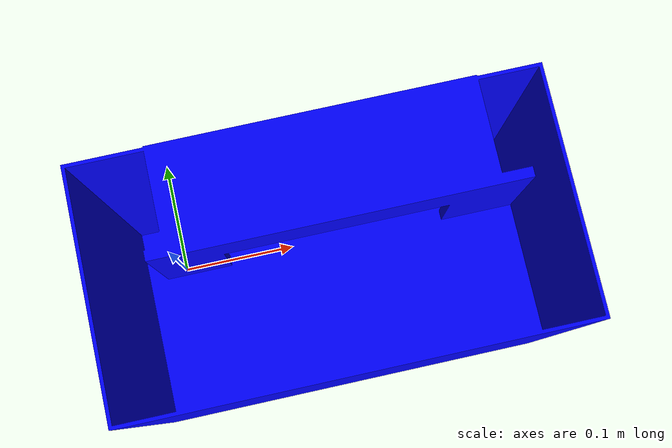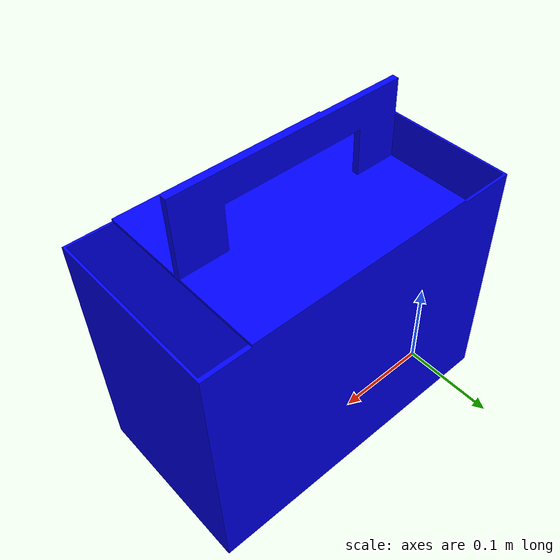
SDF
<?xml version='1.0' ?>
<sdf version='1.6'>
  <model name='bag'>
    <static>0</static>
    <link name='link'>
      <inertial>
        <pose>0 0 0 0 0 0</pose>
        <mass>0.25</mass>
        <inertia>
          <ixx>0.001</ixx>
          <ixy>0.000000</ixy>
          <ixz>0.000000</ixz>
          <iyy>0.001</iyy>
          <iyz>0.000000</iyz>
          <izz>0.001</izz>
        </inertia>
      </inertial>
      <collision name='collision'>
        <geometry>
          <mesh>
            <uri>/home/dewey/517/src/robotics_labs/models/bag/meshs/bag.dae</uri>
            <scale> 1.0 1.0 1.0 </scale>
          </mesh>
        </geometry>
        <surface>
            <friction>
              <ode>
                <mu>300.0</mu>
                <mu2>300.0</mu2>
              </ode>
            </friction>
            <contact>
              <ode>
                <kp>1000000.0</kp>
                <kd>100.0</kd>
                <max_vel>1.0</max_vel>
                <min_depth>0.002</min_depth>
              </ode>
            </contact>
          </surface>
      </collision>
      <visual name='visual'>
        <geometry>
          <mesh>
            <uri>/home/dewey/517/src/robotics_labs/models/bag/meshs/bag.dae</uri>
            <scale> 1.0 1.0 1.0 </scale>
          </mesh>
        </geometry>
      </visual>
      <velocity_decay>
        <linear>0.000000</linear>
        <angular>0.000000</angular>
      </velocity_decay>
      <self_collide>0</self_collide>
      <kinematic>0</kinematic>
      <gravity>1</gravity>
    </link>
  </model>
</sdf>
